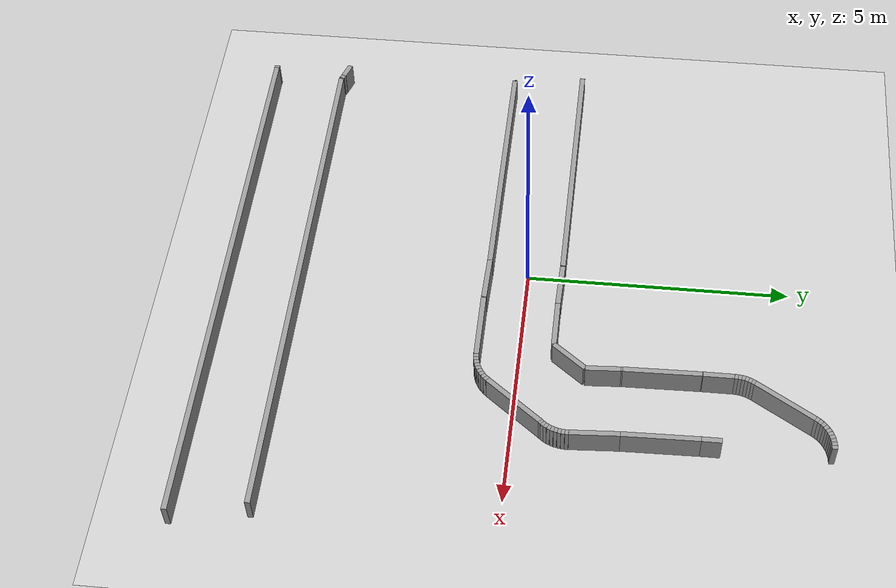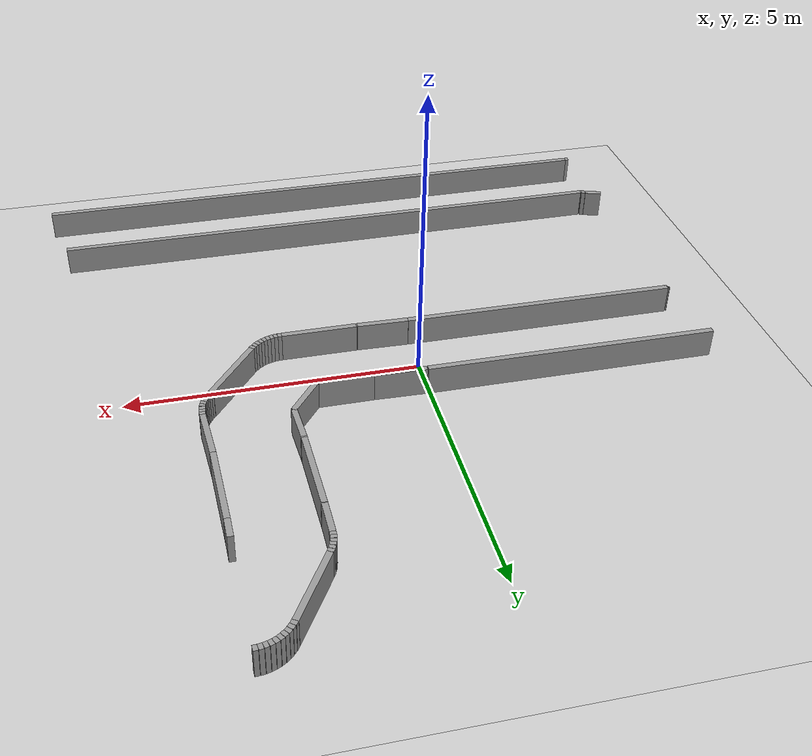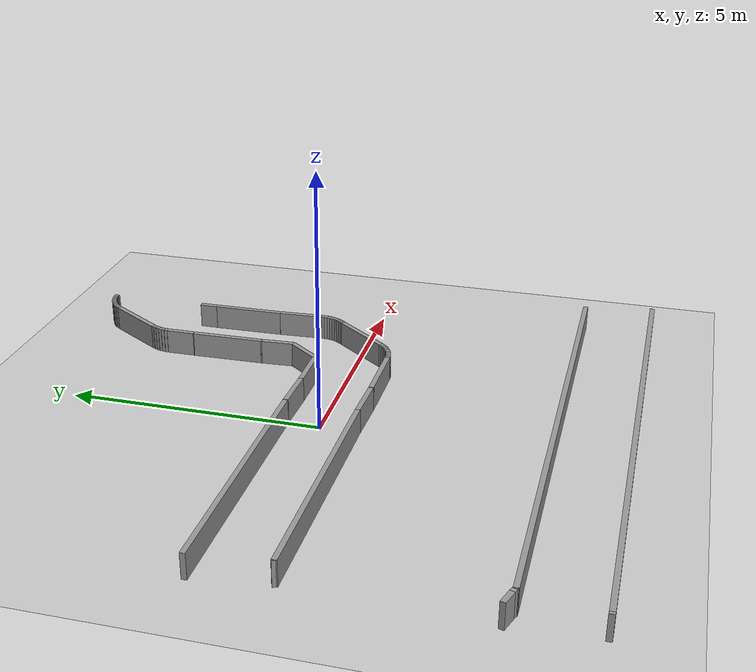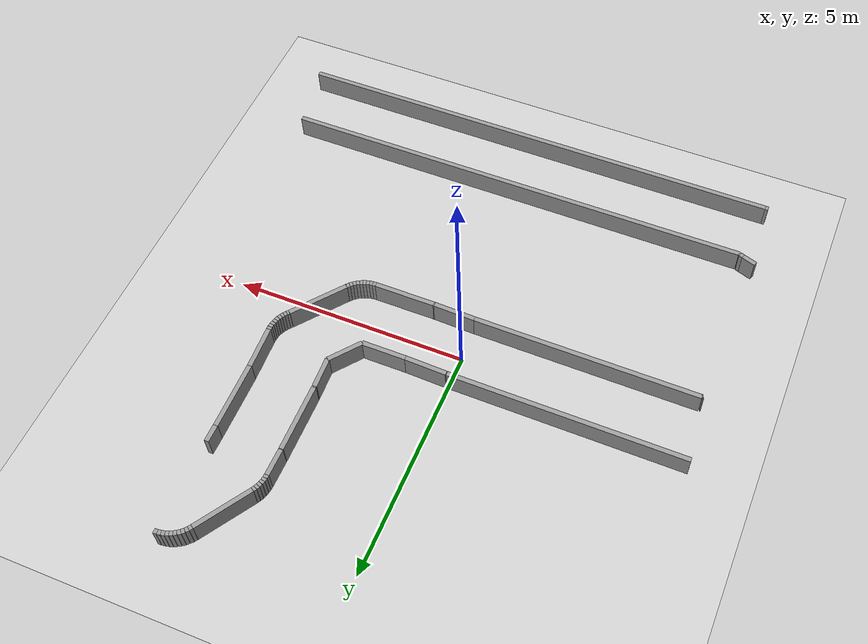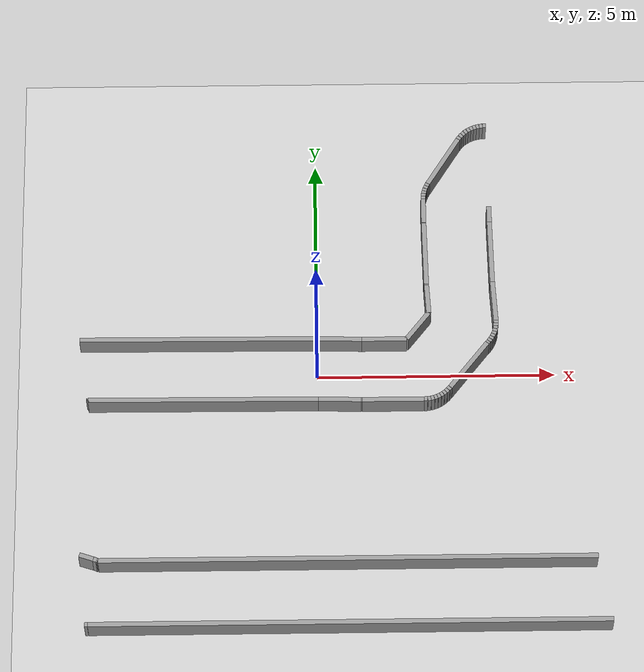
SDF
<sdf version="1.6">
 <world name="v1">
  <include><uri>model://ground_plane</uri></include>
  <include><uri>model://sun</uri></include>
  <model name="wall_0_outward">
   <static>true</static>
   <link name="link">
    <collision name="collision"><geometry><box><size>4.811352609410425 0.1 0.5</size></box></geometry></collision>
    <visual name="visual">
     <geometry><box><size>4.811352609410425 0.1 0.5</size></box></geometry>
     <material>
      <script><uri>file://media/materials/scripts/gazebo.material</uri><name>Gazebo/Gray</name></script>
     </material>
    </visual>
   </link>
   <pose>-2.3921077671465767 -0.7129832513214469 0.25 0 0 3.136617570258939</pose>
  </model>
  <model name="wall_1_outward">
   <static>true</static>
   <link name="link">
    <collision name="collision">
     <geometry><box><size>0.01519779341709608 0.1 0.5</size></box></geometry>
    </collision>
    <visual name="visual">
     <geometry><box><size>0.01519779341709608 0.1 0.5</size></box></geometry>
     <material>
      <script><uri>file://media/materials/scripts/gazebo.material</uri><name>Gazebo/Gray</name></script>
     </material>
    </visual>
   </link>
   <pose>-4.804165196422077 -0.705094522021659 0.25 0 0 -2.5748634360662823</pose>
  </model>
  <model name="wall_13_outward">
   <static>true</static>
   <link name="link">
    <collision name="collision">
     <geometry><box><size>0.30521027597208217 0.1 0.5</size></box></geometry>
    </collision>
    <visual name="visual">
     <geometry><box><size>0.30521027597208217 0.1 0.5</size></box></geometry>
     <material>
      <script><uri>file://media/materials/scripts/gazebo.material</uri><name>Gazebo/Gray</name></script>
     </material>
    </visual>
   </link>
   <pose>-4.773414509392264 -4.237663709496624 0.25 0 0 -0.3217505543966394</pose>
  </model>
  <model name="wall_14_outward">
   <static>true</static>
   <link name="link">
    <collision name="collision">
     <geometry><box><size>0.07649601629051438 0.1 0.5</size></box></geometry>
    </collision>
    <visual name="visual">
     <geometry><box><size>0.07649601629051438 0.1 0.5</size></box></geometry>
     <material>
      <script><uri>file://media/materials/scripts/gazebo.material</uri><name>Gazebo/Gray</name></script>
     </material>
    </visual>
   </link>
   <pose>-4.593070398558009 -4.2999813312098025 0.25 0 0 -0.3764177908651285</pose>
  </model>
  <model name="wall_15_outward">
   <static>true</static>
   <link name="link">
    <collision name="collision">
     <geometry><box><size>0.023473217896632995 0.1 0.5</size></box></geometry>
    </collision>
    <visual name="visual">
     <geometry><box><size>0.023473217896632995 0.1 0.5</size></box></geometry>
     <material>
      <script><uri>file://media/materials/scripts/gazebo.material</uri><name>Gazebo/Gray</name></script>
     </material>
    </visual>
   </link>
   <pose>-4.547121268507016 -4.319520485527482 0.25 0 0 -0.48575226380210956</pose>
  </model>
  <model name="wall_16_outward">
   <static>true</static>
   <link name="link">
    <collision name="collision">
     <geometry><box><size>10.252439492288087 0.1 0.5</size></box></geometry>
    </collision>
    <visual name="visual">
     <geometry><box><size>10.252439492288087 0.1 0.5</size></box></geometry>
     <material>
      <script><uri>file://media/materials/scripts/gazebo.material</uri><name>Gazebo/Gray</name></script>
     </material>
    </visual>
   </link>
   <pose>0.5894774424578157 -4.325 0.25 0 0 0.0</pose>
  </model>
  <model name="wall_30_outward">
   <static>true</static>
   <link name="link">
    <collision name="collision">
     <geometry><box><size>0.3674175815832239 0.1 0.5</size></box></geometry>
    </collision>
    <visual name="visual">
     <geometry><box><size>0.3674175815832239 0.1 0.5</size></box></geometry>
     <material>
      <script><uri>file://media/materials/scripts/gazebo.material</uri><name>Gazebo/Gray</name></script>
     </material>
    </visual>
   </link>
   <pose>3.7 3.5897428251564967 0.25 0 0 -1.5707963267948966</pose>
  </model>
  <model name="wall_31_outward">
   <static>true</static>
   <link name="link">
    <collision name="collision">
     <geometry><box><size>1.4313133774205276 0.1 0.5</size></box></geometry>
    </collision>
    <visual name="visual">
     <geometry><box><size>1.4313133774205276 0.1 0.5</size></box></geometry>
     <material>
      <script><uri>file://media/materials/scripts/gazebo.material</uri><name>Gazebo/Gray</name></script>
     </material>
    </visual>
   </link>
   <pose>3.712337074871021 2.6904836918456696 0.25 0 0 -1.5535566556003668</pose>
  </model>
  <model name="wall_32_outward">
   <static>true</static>
   <link name="link">
    <collision name="collision">
     <geometry><box><size>0.9134822762405521 0.1 0.5</size></box></geometry>
    </collision>
    <visual name="visual">
     <geometry><box><size>0.9134822762405521 0.1 0.5</size></box></geometry>
     <material>
      <script><uri>file://media/materials/scripts/gazebo.material</uri><name>Gazebo/Gray</name></script>
     </material>
    </visual>
   </link>
   <pose>3.749326870518149 1.5188580149684774 0.25 0 0 -1.5167948264189282</pose>
  </model>
  <model name="wall_33_outward">
   <static>true</static>
   <link name="link">
    <collision name="collision">
     <geometry><box><size>0.0652629803152242 0.1 0.5</size></box></geometry>
    </collision>
    <visual name="visual">
     <geometry><box><size>0.0652629803152242 0.1 0.5</size></box></geometry>
     <material>
      <script><uri>file://media/materials/scripts/gazebo.material</uri><name>Gazebo/Gray</name></script>
     </material>
    </visual>
   </link>
   <pose>3.7742200239985837 1.0301520762333054 0.25 0 0 -1.5634281410730102</pose>
  </model>
  <model name="wall_34_outward">
   <static>true</static>
   <link name="link">
    <collision name="collision">
     <geometry><box><size>0.06526298031522416 0.1 0.5</size></box></geometry>
    </collision>
    <visual name="visual">
     <geometry><box><size>0.06526298031522416 0.1 0.5</size></box></geometry>
     <material>
      <script><uri>file://media/materials/scripts/gazebo.material</uri><name>Gazebo/Gray</name></script>
     </material>
    </visual>
   </link>
   <pose>3.7716609082170467 0.9650102941139609 0.25 0 0 -1.6566947703811612</pose>
  </model>
  <model name="wall_35_outward">
   <static>true</static>
   <link name="link">
    <collision name="collision">
     <geometry><box><size>0.06526298031522428 0.1 0.5</size></box></geometry>
    </collision>
    <visual name="visual">
     <geometry><box><size>0.06526298031522428 0.1 0.5</size></box></geometry>
     <material>
      <script><uri>file://media/materials/scripts/gazebo.material</uri><name>Gazebo/Gray</name></script>
     </material>
    </visual>
   </link>
   <pose>3.7630461647395412 0.9003899641389117 0.25 0 0 -1.7499613996893264</pose>
  </model>
  <model name="wall_36_outward">
   <static>true</static>
   <link name="link">
    <collision name="collision">
     <geometry><box><size>0.06526298031522429 0.1 0.5</size></box></geometry>
    </collision>
    <visual name="visual">
     <geometry><box><size>0.06526298031522429 0.1 0.5</size></box></geometry>
     <material>
      <script><uri>file://media/materials/scripts/gazebo.material</uri><name>Gazebo/Gray</name></script>
     </material>
    </visual>
   </link>
   <pose>3.7484506760211915 0.836852789505946 0.25 0 0 -1.8432280289974838</pose>
  </model>
  <model name="wall_37_outward">
   <static>true</static>
   <link name="link">
    <collision name="collision">
     <geometry><box><size>0.06526298031522416 0.1 0.5</size></box></geometry>
    </collision>
    <visual name="visual">
     <geometry><box><size>0.06526298031522416 0.1 0.5</size></box></geometry>
     <material>
      <script><uri>file://media/materials/scripts/gazebo.material</uri><name>Gazebo/Gray</name></script>
     </material>
    </visual>
   </link>
   <pose>3.7280013113102592 0.7749510582362413 0.25 0 0 -1.9364946583056404</pose>
  </model>
  <model name="wall_38_outward">
   <static>true</static>
   <link name="link">
    <collision name="collision">
     <geometry><box><size>0.06526298031522423 0.1 0.5</size></box></geometry>
    </collision>
    <visual name="visual">
     <geometry><box><size>0.06526298031522423 0.1 0.5</size></box></geometry>
     <material>
      <script><uri>file://media/materials/scripts/gazebo.material</uri><name>Gazebo/Gray</name></script>
     </material>
    </visual>
   </link>
   <pose>3.7018758238549143 0.7152228424878357 0.25 0 0 -2.029761287613799</pose>
  </model>
  <model name="wall_39_outward">
   <static>true</static>
   <link name="link">
    <collision name="collision">
     <geometry><box><size>0.06526298031522398 0.1 0.5</size></box></geometry>
    </collision>
    <visual name="visual">
     <geometry><box><size>0.06526298031522398 0.1 0.5</size></box></geometry>
     <material>
      <script><uri>file://media/materials/scripts/gazebo.material</uri><name>Gazebo/Gray</name></script>
     </material>
    </visual>
   </link>
   <pose>3.6703013058079375 0.6581873214385056 0.25 0 0 -2.123027916921953</pose>
  </model>
  <model name="wall_40_outward">
   <static>true</static>
   <link name="link">
    <collision name="collision">
     <geometry><box><size>0.06526298031522433 0.1 0.5</size></box></geometry>
    </collision>
    <visual name="visual">
     <geometry><box><size>0.06526298031522433 0.1 0.5</size></box></geometry>
     <material>
      <script><uri>file://media/materials/scripts/gazebo.material</uri><name>Gazebo/Gray</name></script>
     </material>
    </visual>
   </link>
   <pose>3.6335522142598835 0.6043402683932351 0.25 0 0 -2.2162945462301193</pose>
  </model>
  <model name="wall_41_outward">
   <static>true</static>
   <link name="link">
    <collision name="collision">
     <geometry><box><size>0.05462391554770928 0.1 0.5</size></box></geometry>
    </collision>
    <visual name="visual">
     <geometry><box><size>0.05462391554770928 0.1 0.5</size></box></geometry>
     <material>
      <script><uri>file://media/materials/scripts/gazebo.material</uri><name>Gazebo/Gray</name></script>
     </material>
    </visual>
   </link>
   <pose>3.5955300271523285 0.5580824761184562 0.25 0 0 -2.3095611755382763</pose>
  </model>
  <model name="wall_42_outward">
   <static>true</static>
   <link name="link">
    <collision name="collision">
     <geometry><box><size>1.2976497668855076 0.1 0.5</size></box></geometry>
    </collision>
    <visual name="visual">
     <geometry><box><size>1.2976497668855076 0.1 0.5</size></box></geometry>
     <material>
      <script><uri>file://media/materials/scripts/gazebo.material</uri><name>Gazebo/Gray</name></script>
     </material>
    </visual>
   </link>
   <pose>3.1762808335963344 0.027707818183025895 0.25 0 0 -2.2367655641740063</pose>
  </model>
  <model name="wall_43_outward">
   <static>true</static>
   <link name="link">
    <collision name="collision">
     <geometry><box><size>0.0703458055437406 0.1 0.5</size></box></geometry>
    </collision>
    <visual name="visual">
     <geometry><box><size>0.0703458055437406 0.1 0.5</size></box></geometry>
     <material>
      <script><uri>file://media/materials/scripts/gazebo.material</uri><name>Gazebo/Gray</name></script>
     </material>
    </visual>
   </link>
   <pose>2.752330023060858 -0.5090053525714443 0.25 0 0 -2.2870337358082216</pose>
  </model>
  <model name="wall_44_outward">
   <static>true</static>
   <link name="link">
    <collision name="collision">
     <geometry><box><size>0.07034580554374016 0.1 0.5</size></box></geometry>
    </collision>
    <visual name="visual">
     <geometry><box><size>0.07034580554374016 0.1 0.5</size></box></geometry>
     <material>
      <script><uri>file://media/materials/scripts/gazebo.material</uri><name>Gazebo/Gray</name></script>
     </material>
    </visual>
   </link>
   <pose>2.7035982375410033 -0.5596141618256365 0.25 0 0 -2.387570079076631</pose>
  </model>
  <model name="wall_45_outward">
   <static>true</static>
   <link name="link">
    <collision name="collision">
     <geometry><box><size>0.0703458055437408 0.1 0.5</size></box></geometry>
    </collision>
    <visual name="visual">
     <geometry><box><size>0.0703458055437408 0.1 0.5</size></box></geometry>
     <material>
      <script><uri>file://media/materials/scripts/gazebo.material</uri><name>Gazebo/Gray</name></script>
     </material>
    </visual>
   </link>
   <pose>2.6500330665828615 -0.6050763544070038 0.25 0 0 -2.4881064223450617</pose>
  </model>
  <model name="wall_46_outward">
   <static>true</static>
   <link name="link">
    <collision name="collision">
     <geometry><box><size>0.07034580554374041 0.1 0.5</size></box></geometry>
    </collision>
    <visual name="visual">
     <geometry><box><size>0.07034580554374041 0.1 0.5</size></box></geometry>
     <material>
      <script><uri>file://media/materials/scripts/gazebo.material</uri><name>Gazebo/Gray</name></script>
     </material>
    </visual>
   </link>
   <pose>2.5921754672919963 -0.6449328055583293 0.25 0 0 -2.5886427656134776</pose>
  </model>
  <model name="wall_47_outward">
   <static>true</static>
   <link name="link">
    <collision name="collision">
     <geometry><box><size>0.0703458055437405 0.1 0.5</size></box></geometry>
    </collision>
    <visual name="visual">
     <geometry><box><size>0.0703458055437405 0.1 0.5</size></box></geometry>
     <material>
      <script><uri>file://media/materials/scripts/gazebo.material</uri><name>Gazebo/Gray</name></script>
     </material>
    </visual>
   </link>
   <pose>2.5306097462035586 -0.6787810031608756 0.25 0 0 -2.6891791088819006</pose>
  </model>
  <model name="wall_48_outward">
   <static>true</static>
   <link name="link">
    <collision name="collision">
     <geometry><box><size>0.07034580554374019 0.1 0.5</size></box></geometry>
    </collision>
    <visual name="visual">
     <geometry><box><size>0.07034580554374019 0.1 0.5</size></box></geometry>
     <material>
      <script><uri>file://media/materials/scripts/gazebo.material</uri><name>Gazebo/Gray</name></script>
     </material>
    </visual>
   </link>
   <pose>2.4659576583439264 -0.7062791127226375 0.25 0 0 -2.78971545215032</pose>
  </model>
  <model name="wall_49_outward">
   <static>true</static>
   <link name="link">
    <collision name="collision">
     <geometry><box><size>0.0703458055437407 0.1 0.5</size></box></geometry>
    </collision>
    <visual name="visual">
     <geometry><box><size>0.0703458055437407 0.1 0.5</size></box></geometry>
     <material>
      <script><uri>file://media/materials/scripts/gazebo.material</uri><name>Gazebo/Gray</name></script>
     </material>
    </visual>
   </link>
   <pose>2.3988721280983225 -0.7271494295804739 0.25 0 0 -2.8902517954187417</pose>
  </model>
  <model name="wall_50_outward">
   <static>true</static>
   <link name="link">
    <collision name="collision">
     <geometry><box><size>0.07034580554374024 0.1 0.5</size></box></geometry>
    </collision>
    <visual name="visual">
     <geometry><box><size>0.07034580554374024 0.1 0.5</size></box></geometry>
     <material>
      <script><uri>file://media/materials/scripts/gazebo.material</uri><name>Gazebo/Gray</name></script>
     </material>
    </visual>
   </link>
   <pose>2.3300306552976595 -0.7411811834521718 0.25 0 0 -2.990788138687161</pose>
  </model>
  <model name="wall_51_outward">
   <static>true</static>
   <link name="link">
    <collision name="collision">
     <geometry><box><size>0.07034580554374062 0.1 0.5</size></box></geometry>
    </collision>
    <visual name="visual">
     <geometry><box><size>0.07034580554374062 0.1 0.5</size></box></geometry>
     <material>
      <script><uri>file://media/materials/scripts/gazebo.material</uri><name>Gazebo/Gray</name></script>
     </material>
    </visual>
   </link>
   <pose>2.2601284731168336 -0.7482326670151437 0.25 0 0 -3.0913244819555836</pose>
  </model>
  <model name="wall_52_outward">
   <static>true</static>
   <link name="link">
    <collision name="collision"><geometry><box><size>1.3 0.1 0.5</size></box></geometry></collision>
    <visual name="visual">
     <geometry><box><size>1.3 0.1 0.5</size></box></geometry>
     <material>
      <script><uri>file://media/materials/scripts/gazebo.material</uri><name>Gazebo/Gray</name></script>
     </material>
    </visual>
   </link>
   <pose>1.5750000000000002 -0.75 0.25 0 0 3.141592653589793</pose>
  </model>
  <model name="wall_53_outward">
   <static>true</static>
   <link name="link">
    <collision name="collision">
     <geometry><box><size>0.019438820960542877 0.1 0.5</size></box></geometry>
    </collision>
    <visual name="visual">
     <geometry><box><size>0.019438820960542877 0.1 0.5</size></box></geometry>
     <material>
      <script><uri>file://media/materials/scripts/gazebo.material</uri><name>Gazebo/Gray</name></script>
     </material>
    </visual>
   </link>
   <pose>0.9152815264658765 -0.7498650472284514 0.25 0 0 3.1277073352930844</pose>
  </model>
  <model name="wall_54_outward">
   <static>true</static>
   <link name="link">
    <collision name="collision">
     <geometry><box><size>0.8923683661172275 0.1 0.5</size></box></geometry>
    </collision>
    <visual name="visual">
     <geometry><box><size>0.8923683661172275 0.1 0.5</size></box></geometry>
     <material>
      <script><uri>file://media/materials/scripts/gazebo.material</uri><name>Gazebo/Gray</name></script>
     </material>
    </visual>
   </link>
   <pose>0.45955090927921016 -0.7373408682443322 0.25 0 0 3.113822016996372</pose>
  </model>
  <model name="wall_0_inward">
   <static>true</static>
   <link name="link">
    <collision name="collision">
     <geometry><box><size>5.0250621886699065 0.1 0.5</size></box></geometry>
    </collision>
    <visual name="visual">
     <geometry><box><size>5.0250621886699065 0.1 0.5</size></box></geometry>
     <material>
      <script><uri>file://media/materials/scripts/gazebo.material</uri><name>Gazebo/Gray</name></script>
     </material>
    </visual>
   </link>
   <pose>-2.4840174560347816 0.6874913370089164 0.25 0 0 3.136617570258939</pose>
  </model>
  <model name="wall_49_inward">
   <static>true</static>
   <link name="link">
    <collision name="collision">
     <geometry><box><size>0.06302763176735897 0.1 0.5</size></box></geometry>
    </collision>
    <visual name="visual">
     <geometry><box><size>0.06302763176735897 0.1 0.5</size></box></geometry>
     <material>
      <script><uri>file://media/materials/scripts/gazebo.material</uri><name>Gazebo/Gray</name></script>
     </material>
    </visual>
   </link>
   <pose>-4.7564818639514534 -5.723581256297786 0.25 0 0 -0.045034958355886626</pose>
  </model>
  <model name="wall_50_inward">
   <static>true</static>
   <link name="link">
    <collision name="collision"><geometry><box><size>10.7 0.1 0.5</size></box></geometry></collision>
    <visual name="visual">
     <geometry><box><size>10.7 0.1 0.5</size></box></geometry>
     <material>
      <script><uri>file://media/materials/scripts/gazebo.material</uri><name>Gazebo/Gray</name></script>
     </material>
    </visual>
   </link>
   <pose>0.625 -5.7250000000000005 0.25 0 0 0.0</pose>
  </model>
  <model name="wall_97_inward">
   <static>true</static>
   <link name="link">
    <collision name="collision">
     <geometry><box><size>0.07211881341241912 0.1 0.5</size></box></geometry>
    </collision>
    <visual name="visual">
     <geometry><box><size>0.07211881341241912 0.1 0.5</size></box></geometry>
     <material>
      <script><uri>file://media/materials/scripts/gazebo.material</uri><name>Gazebo/Gray</name></script>
     </material>
    </visual>
   </link>
   <pose>3.6533877525936527 5.748736452426838 0.25 0 0 -3.1106720408435056</pose>
  </model>
  <model name="wall_98_inward">
   <static>true</static>
   <link name="link">
    <collision name="collision">
     <geometry><box><size>0.07211881341241928 0.1 0.5</size></box></geometry>
    </collision>
    <visual name="visual">
     <geometry><box><size>0.07211881341241928 0.1 0.5</size></box></geometry>
     <material>
      <script><uri>file://media/materials/scripts/gazebo.material</uri><name>Gazebo/Gray</name></script>
     </material>
    </visual>
   </link>
   <pose>3.5816093997480536 5.742804384348553 0.25 0 0 -3.007599544099749</pose>
  </model>
  <model name="wall_99_inward">
   <static>true</static>
   <link name="link">
    <collision name="collision"><geometry><box><size>0.072118813412419 0.1 0.5</size></box></geometry></collision>
    <visual name="visual">
     <geometry><box><size>0.072118813412419 0.1 0.5</size></box></geometry>
     <material>
      <script><uri>file://media/materials/scripts/gazebo.material</uri><name>Gazebo/Gray</name></script>
     </material>
    </visual>
   </link>
   <pose>3.5108223449067735 5.729518518331977 0.25 0 0 -2.9045270473559768</pose>
  </model>
  <model name="wall_100_inward">
   <static>true</static>
   <link name="link">
    <collision name="collision"><geometry><box><size>0.072118813412419 0.1 0.5</size></box></geometry></collision>
    <visual name="visual">
     <geometry><box><size>0.072118813412419 0.1 0.5</size></box></geometry>
     <material>
      <script><uri>file://media/materials/scripts/gazebo.material</uri><name>Gazebo/Gray</name></script>
     </material>
    </visual>
   </link>
   <pose>3.4417779598995963 5.709019877696722 0.25 0 0 -2.801454550612198</pose>
  </model>
  <model name="wall_101_inward">
   <static>true</static>
   <link name="link">
    <collision name="collision">
     <geometry><box><size>0.07211881341241926 0.1 0.5</size></box></geometry>
    </collision>
    <visual name="visual">
     <geometry><box><size>0.07211881341241926 0.1 0.5</size></box></geometry>
     <material>
      <script><uri>file://media/materials/scripts/gazebo.material</uri><name>Gazebo/Gray</name></script>
     </material>
    </visual>
   </link>
   <pose>3.3752091189224505 5.681526046027194 0.25 0 0 -2.698382053868432</pose>
  </model>
  <model name="wall_102_inward">
   <static>true</static>
   <link name="link">
    <collision name="collision">
     <geometry><box><size>0.07211881341241935 0.1 0.5</size></box></geometry>
    </collision>
    <visual name="visual">
     <geometry><box><size>0.07211881341241935 0.1 0.5</size></box></geometry>
     <material>
      <script><uri>file://media/materials/scripts/gazebo.material</uri><name>Gazebo/Gray</name></script>
     </material>
    </visual>
   </link>
   <pose>3.311822419416969 5.647328857623547 0.25 0 0 -2.595309557124664</pose>
  </model>
  <model name="wall_103_inward">
   <static>true</static>
   <link name="link">
    <collision name="collision">
     <geometry><box><size>0.0721188134124193 0.1 0.5</size></box></geometry>
    </collision>
    <visual name="visual">
     <geometry><box><size>0.0721188134124193 0.1 0.5</size></box></geometry>
     <material>
      <script><uri>file://media/materials/scripts/gazebo.material</uri><name>Gazebo/Gray</name></script>
     </material>
    </visual>
   </link>
   <pose>3.2522906818656274 5.6067912998156215 0.25 0 0 -2.4922370603808948</pose>
  </model>
  <model name="wall_104_inward">
   <static>true</static>
   <link name="link">
    <collision name="collision">
     <geometry><box><size>0.0721188134124189 0.1 0.5</size></box></geometry>
    </collision>
    <visual name="visual">
     <geometry><box><size>0.0721188134124189 0.1 0.5</size></box></geometry>
     <material>
      <script><uri>file://media/materials/scripts/gazebo.material</uri><name>Gazebo/Gray</name></script>
     </material>
    </visual>
   </link>
   <pose>3.197245808113676 5.560343660020424 0.25 0 0 -2.3891645636371295</pose>
  </model>
  <model name="wall_105_inward">
   <static>true</static>
   <link name="link">
    <collision name="collision">
     <geometry><box><size>0.07211881341241921 0.1 0.5</size></box></geometry>
    </collision>
    <visual name="visual">
     <geometry><box><size>0.07211881341241921 0.1 0.5</size></box></geometry>
     <material>
      <script><uri>file://media/materials/scripts/gazebo.material</uri><name>Gazebo/Gray</name></script>
     </material>
    </visual>
   </link>
   <pose>3.1472720740234728 5.508478958440308 0.25 0 0 -2.2860920668933575</pose>
  </model>
  <model name="wall_106_inward">
   <static>true</static>
   <link name="link">
    <collision name="collision">
     <geometry><box><size>0.07211881341241895 0.1 0.5</size></box></geometry>
    </collision>
    <visual name="visual">
     <geometry><box><size>0.07211881341241895 0.1 0.5</size></box></geometry>
     <material>
      <script><uri>file://media/materials/scripts/gazebo.material</uri><name>Gazebo/Gray</name></script>
     </material>
    </visual>
   </link>
   <pose>3.1028999276565834 5.451747714881682 0.25 0 0 -2.1830195701495816</pose>
  </model>
  <model name="wall_107_inward">
   <static>true</static>
   <link name="link">
    <collision name="collision">
     <geometry><box><size>1.2693502274786097 0.1 0.5</size></box></geometry>
    </collision>
    <visual name="visual">
     <geometry><box><size>1.2693502274786097 0.1 0.5</size></box></geometry>
     <material>
      <script><uri>file://media/materials/scripts/gazebo.material</uri><name>Gazebo/Gray</name></script>
     </material>
    </visual>
   </link>
   <pose>2.7446770078028524 4.884737692774953 0.25 0 0 -2.1314833217777025</pose>
  </model>
  <model name="wall_108_inward">
   <static>true</static>
   <link name="link">
    <collision name="collision">
     <geometry><box><size>0.06538968438471815 0.1 0.5</size></box></geometry>
    </collision>
    <visual name="visual">
     <geometry><box><size>0.06538968438471815 0.1 0.5</size></box></geometry>
     <material>
      <script><uri>file://media/materials/scripts/gazebo.material</uri><name>Gazebo/Gray</name></script>
     </material>
    </visual>
   </link>
   <pose>2.391103171935283 4.3187669269530495 0.25 0 0 -2.0847594055291356</pose>
  </model>
  <model name="wall_109_inward">
   <static>true</static>
   <link name="link">
    <collision name="collision">
     <geometry><box><size>0.06538968438471905 0.1 0.5</size></box></geometry>
    </collision>
    <visual name="visual">
     <geometry><box><size>0.06538968438471905 0.1 0.5</size></box></geometry>
     <material>
      <script><uri>file://media/materials/scripts/gazebo.material</uri><name>Gazebo/Gray</name></script>
     </material>
    </visual>
   </link>
   <pose>2.361682292373085 4.260449735371987 0.25 0 0 -1.9913115730320061</pose>
  </model>
  <model name="wall_110_inward">
   <static>true</static>
   <link name="link">
    <collision name="collision">
     <geometry><box><size>0.06538968438471866 0.1 0.5</size></box></geometry>
    </collision>
    <visual name="visual">
     <geometry><box><size>0.06538968438471866 0.1 0.5</size></box></geometry>
     <material>
      <script><uri>file://media/materials/scripts/gazebo.material</uri><name>Gazebo/Gray</name></script>
     </material>
    </visual>
   </link>
   <pose>2.337831465389212 4.199641668141552 0.25 0 0 -1.8978637405348653</pose>
  </model>
  <model name="wall_111_inward">
   <static>true</static>
   <link name="link">
    <collision name="collision">
     <geometry><box><size>0.06538968438471894 0.1 0.5</size></box></geometry>
    </collision>
    <visual name="visual">
     <geometry><box><size>0.06538968438471894 0.1 0.5</size></box></geometry>
     <material>
      <script><uri>file://media/materials/scripts/gazebo.material</uri><name>Gazebo/Gray</name></script>
     </material>
    </visual>
   </link>
   <pose>2.3197588167472922 4.136873345245512 0.25 0 0 -1.8044159080377293</pose>
  </model>
  <model name="wall_112_inward">
   <static>true</static>
   <link name="link">
    <collision name="collision">
     <geometry><box><size>0.06538968438471829 0.1 0.5</size></box></geometry>
    </collision>
    <visual name="visual">
     <geometry><box><size>0.06538968438471829 0.1 0.5</size></box></geometry>
     <material>
      <script><uri>file://media/materials/scripts/gazebo.material</uri><name>Gazebo/Gray</name></script>
     </material>
    </visual>
   </link>
   <pose>2.3076220509915704 4.072692492141908 0.25 0 0 -1.7109680755405978</pose>
  </model>
  <model name="wall_113_inward">
   <static>true</static>
   <link name="link">
    <collision name="collision">
     <geometry><box><size>0.06538968438471889 0.1 0.5</size></box></geometry>
    </collision>
    <visual name="visual">
     <geometry><box><size>0.06538968438471889 0.1 0.5</size></box></geometry>
     <material>
      <script><uri>file://media/materials/scripts/gazebo.material</uri><name>Gazebo/Gray</name></script>
     </material>
    </visual>
   </link>
   <pose>2.3015270752942616 4.007659160231533 0.25 0 0 -1.6175202430434688</pose>
  </model>
  <model name="wall_114_inward">
   <static>true</static>
   <link name="link">
    <collision name="collision">
     <geometry><box><size>0.5750000000000002 0.1 0.5</size></box></geometry>
    </collision>
    <visual name="visual">
     <geometry><box><size>0.5750000000000002 0.1 0.5</size></box></geometry>
     <material>
      <script><uri>file://media/materials/scripts/gazebo.material</uri><name>Gazebo/Gray</name></script>
     </material>
    </visual>
   </link>
   <pose>2.3 3.6875 0.25 0 0 -1.5707963267948966</pose>
  </model>
  <model name="wall_115_inward">
   <static>true</static>
   <link name="link">
    <collision name="collision">
     <geometry><box><size>0.012067620394360183 0.1 0.5</size></box></geometry>
    </collision>
    <visual name="visual">
     <geometry><box><size>0.012067620394360183 0.1 0.5</size></box></geometry>
     <material>
      <script><uri>file://media/materials/scripts/gazebo.material</uri><name>Gazebo/Gray</name></script>
     </material>
    </visual>
   </link>
   <pose>2.3000520098078505 3.3939664139622043 0.25 0 0 -1.5621764911976208</pose>
  </model>
  <model name="wall_116_inward">
   <static>true</static>
   <link name="link">
    <collision name="collision">
     <geometry><box><size>1.4502155012273177 0.1 0.5</size></box></geometry>
    </collision>
    <visual name="visual">
     <geometry><box><size>1.4502155012273177 0.1 0.5</size></box></geometry>
     <material>
      <script><uri>file://media/materials/scripts/gazebo.material</uri><name>Gazebo/Gray</name></script>
     </material>
    </visual>
   </link>
   <pose>2.3126040196157014 2.6629328279244087 0.25 0 0 -1.553556655600367</pose>
  </model>
  <model name="wall_117_inward">
   <static>true</static>
   <link name="link">
    <collision name="collision">
     <geometry><box><size>0.025731831418951474 0.1 0.5</size></box></geometry>
    </collision>
    <visual name="visual">
     <geometry><box><size>0.025731831418951474 0.1 0.5</size></box></geometry>
     <material>
      <script><uri>file://media/materials/scripts/gazebo.material</uri><name>Gazebo/Gray</name></script>
     </material>
    </visual>
   </link>
   <pose>2.3255622141607226 1.925075073656954 0.25 0 0 -1.535175741009645</pose>
  </model>
  <model name="wall_118_inward">
   <static>true</static>
   <link name="link">
    <collision name="collision"><geometry><box><size>0.656491439089804 0.1 0.5</size></box></geometry></collision>
    <visual name="visual">
     <geometry><box><size>0.656491439089804 0.1 0.5</size></box></geometry>
     <material>
      <script><uri>file://media/materials/scripts/gazebo.material</uri><name>Gazebo/Gray</name></script>
     </material>
    </visual>
   </link>
   <pose>2.3437375561105 1.5844500924015215 0.25 0 0 -1.516794826418928</pose>
  </model>
  <model name="wall_119_inward">
   <static>true</static>
   <link name="link">
    <collision name="collision">
     <geometry><box><size>0.7715486660556612 0.1 0.5</size></box></geometry>
    </collision>
    <visual name="visual">
     <geometry><box><size>0.7715486660556612 0.1 0.5</size></box></geometry>
     <material>
      <script><uri>file://media/materials/scripts/gazebo.material</uri><name>Gazebo/Gray</name></script>
     </material>
    </visual>
   </link>
   <pose>2.123115006388506 0.9533414327067717 0.25 0 0 -2.2367655641740063</pose>
  </model>
  <model name="wall_120_inward">
   <static>true</static>
   <link name="link">
    <collision name="collision">
     <geometry><box><size>0.9500549617450066 0.1 0.5</size></box></geometry>
    </collision>
    <visual name="visual">
     <geometry><box><size>0.9500549617450066 0.1 0.5</size></box></geometry>
     <material>
      <script><uri>file://media/materials/scripts/gazebo.material</uri><name>Gazebo/Gray</name></script>
     </material>
    </visual>
   </link>
   <pose>1.4097478283892537 0.6499999999999999 0.25 0 0 3.141592653589793</pose>
  </model>
  <model name="wall_121_inward">
   <static>true</static>
   <link name="link">
    <collision name="collision">
     <geometry><box><size>0.8906268077517075 0.1 0.5</size></box></geometry>
    </collision>
    <visual name="visual">
     <geometry><box><size>0.8906268077517075 0.1 0.5</size></box></geometry>
     <material>
      <script><uri>file://media/materials/scripts/gazebo.material</uri><name>Gazebo/Gray</name></script>
     </material>
    </visual>
   </link>
   <pose>0.48957864729249884 0.6623650472284514 0.25 0 0 3.113822016996372</pose>
  </model>
 </world>
</sdf>
